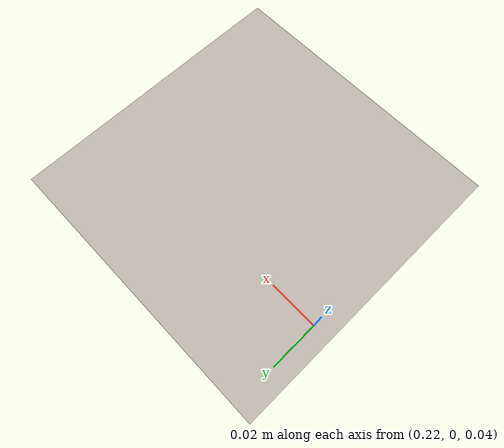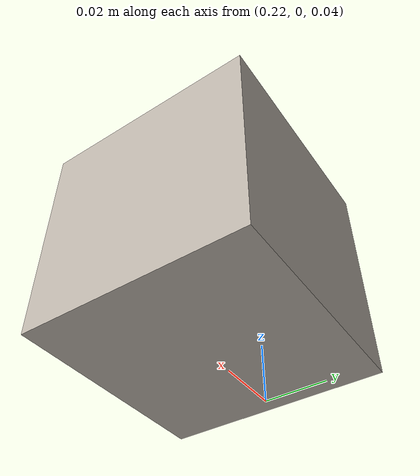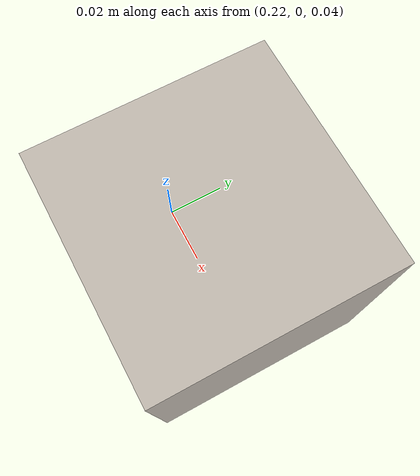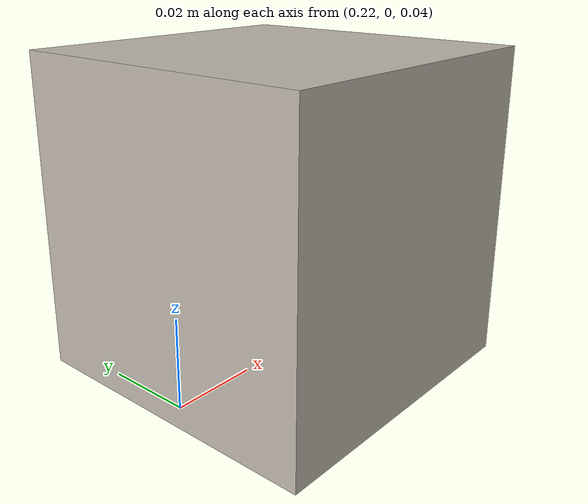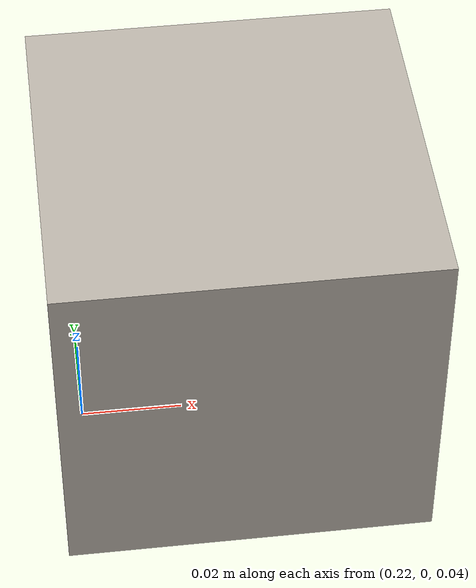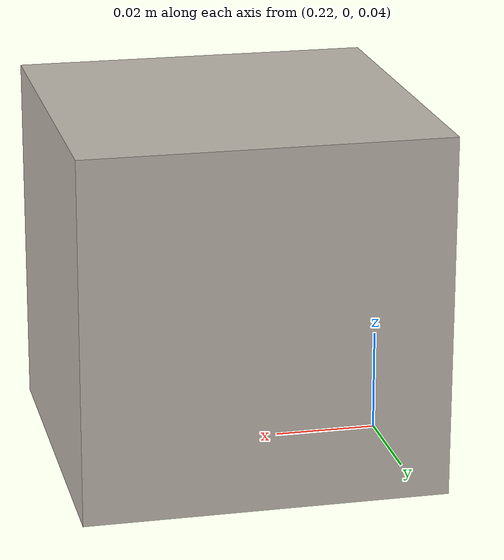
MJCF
<mujoco>
  <asset>
    <texture name="cube" type="cube"
             fileup="../assets/cube/fileup.png" fileback="../assets/cube/fileback.png"
             filedown="../assets/cube/filedown.png" filefront="../assets/cube/filefront.png"
             fileleft="../assets/cube/fileleft.png" fileright="../assets/cube/fileright.png"/>
    <material name="cube" texture="cube"/>
    <texture name="graycube" type="cube" fileup="../assets/cube/grayup.png"
             fileback="../assets/cube/grayback.png" filedown="../assets/cube/graydown.png"
             filefront="../assets/cube/grayfront.png" fileleft="../assets/cube/grayleft.png"
             fileright="../assets/cube/grayright.png"/>
    <material name="graycube" texture="graycube"/>
  </asset>
  <worldbody>
    <light pos="0 0 1"/>
    <body name="cube" pos="0.25 0.0 0.075" quat="1 0 0 0">
      <freejoint/>
      <geom name="cube" type="box" size=".035 .035 .035" mass=".194" material="cube"/>
    </body>
  </worldbody>

   <sensor>
        <framepos name="trace0" objtype="body" objname="cube"/>
        <framepos name="cube_position" objtype="body" objname="cube"/>
        <framequat name="cube_orientation" objtype="body" objname="cube"/>
        <framelinvel name="cube_linear_velocity" objtype="body" objname="cube"/>
        <frameangvel name="cube_angular_velocity" objtype="body" objname="cube"/>
    </sensor>
</mujoco>
